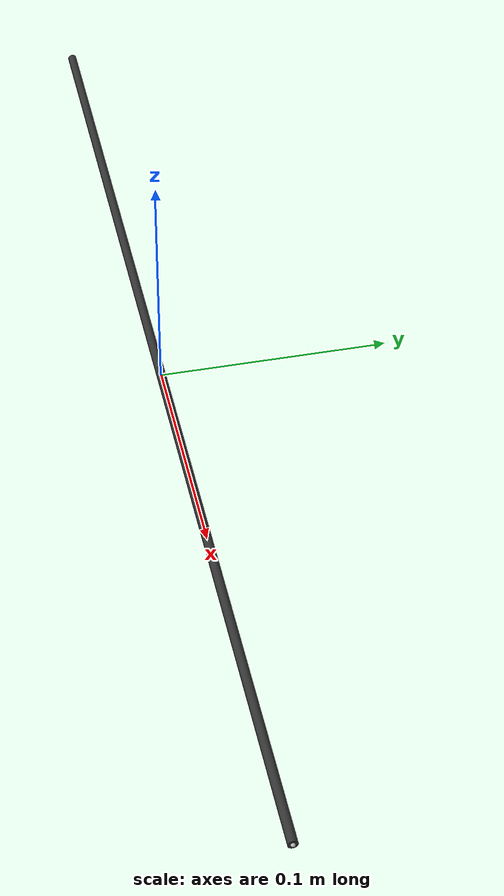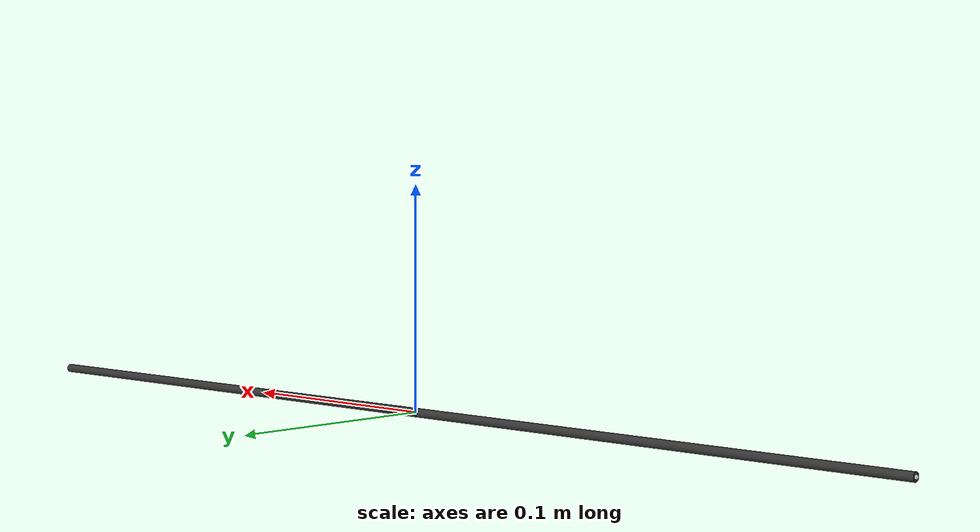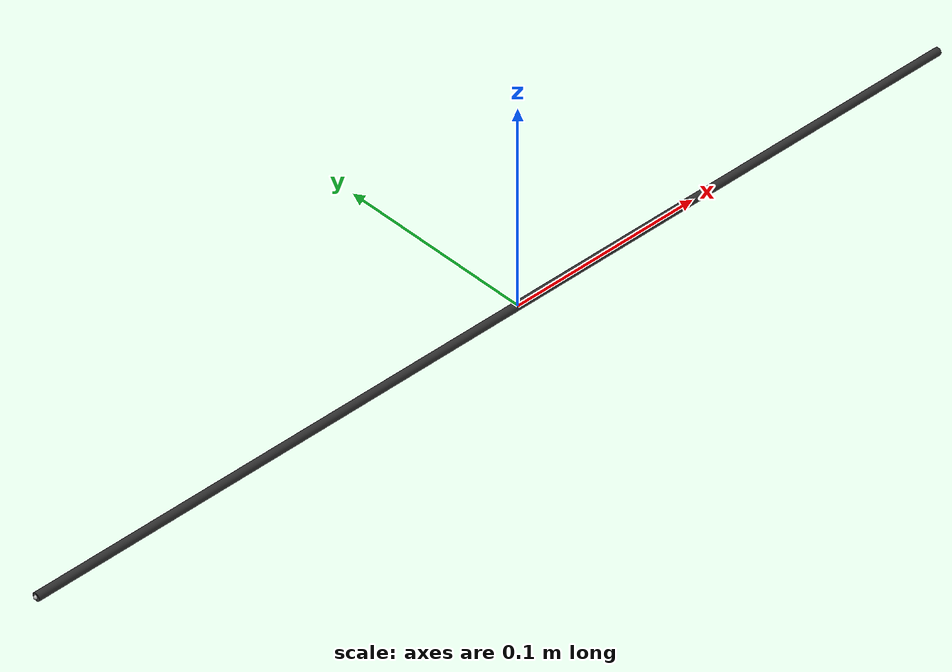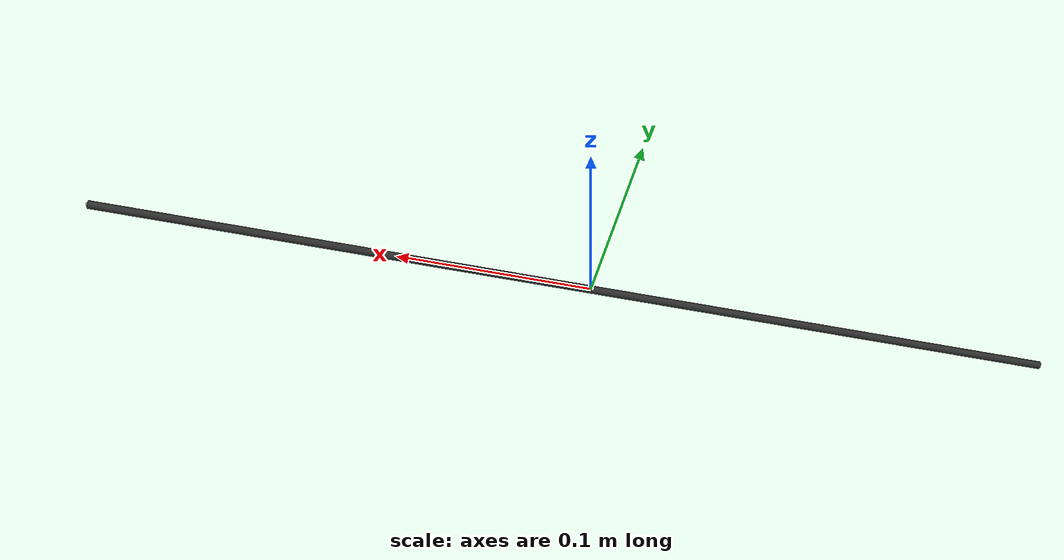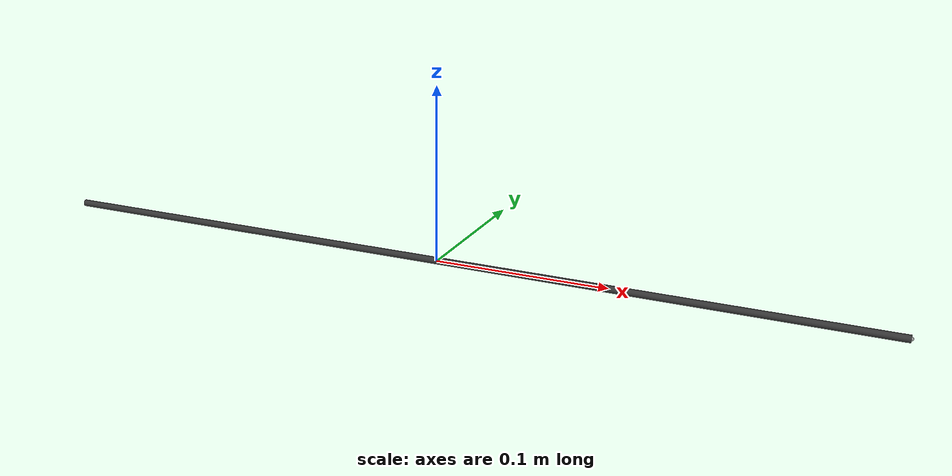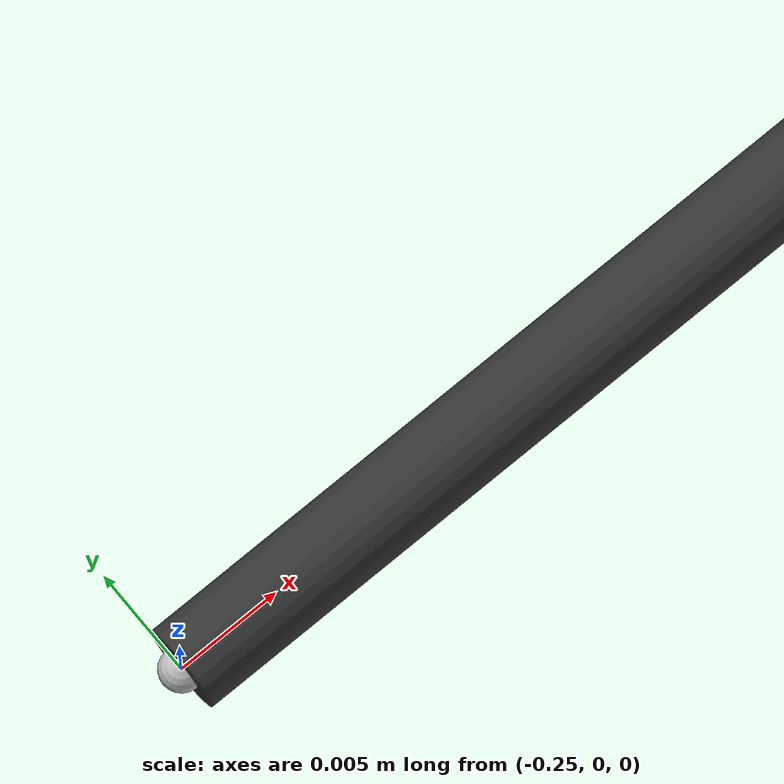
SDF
<?xml version="1.0" ?>
<sdf version="1.8">
  <model name="segment">
    <link name="segment_link">
      <inertial>
        <mass>0.001</mass>
        <pose>0 0 0 0 1.5708 0</pose>
        <inertia>
            <ixx>1e-7</ixx>
            <iyy>1e-7</iyy>
            <izz>1e-7</izz>
        </inertia>
      </inertial>
      <visual name="segment_visual">
        <pose>0 0 0 0 1.5708 0</pose>
        <geometry>
          <cylinder>
            <radius>0.002</radius>
            <length>0.5</length> </cylinder>
        </geometry>
        <material>
          <ambient>0.2 0.2 0.2 1</ambient>
          <diffuse>0.2 0.2 0.2 1</diffuse>
          <specular>0.0 0.0 0.0 1</specular>
          <emissive>0.0 0.0 0.0 1</emissive>
        </material>
      </visual>
    </link>
    <link name="segment_start">
        <pose>-0.25 0 0 0 0 0</pose>
        <inertial>
          <mass>1e-9</mass>
          <inertia>
            <ixx>1e-9</ixx>
            <iyy>1e-9</iyy>
            <izz>1e-9</izz>
        </inertia>
        </inertial>
        <visual name="start_visual"><geometry><sphere><radius>0.001</radius></sphere></geometry></visual>
        <collision name="start_collision"><geometry><sphere><radius>0.001</radius></sphere></geometry></collision>
    </link>
    <joint name="start_joint" type="fixed">
        <parent>segment_link</parent>
        <child>segment_start</child>
    </joint>
    <link name="segment_end">
        <pose>0.25 0 0 0 0 0</pose>
        <inertial>
          <mass>1e-9</mass>
          <inertia>
            <ixx>1e-9</ixx>
            <iyy>1e-9</iyy>
            <izz>1e-9</izz>
        </inertia>
        </inertial>
        <visual name="end_visual"><geometry><sphere><radius>0.001</radius></sphere></geometry></visual>
        <collision name="end_collision"><geometry><sphere><radius>0.001</radius></sphere></geometry></collision>
    </link>
    <joint name="end_joint" type="fixed">
        <parent>segment_end</parent>
        <child>segment_link</child>
    </joint>
  </model>
</sdf>
